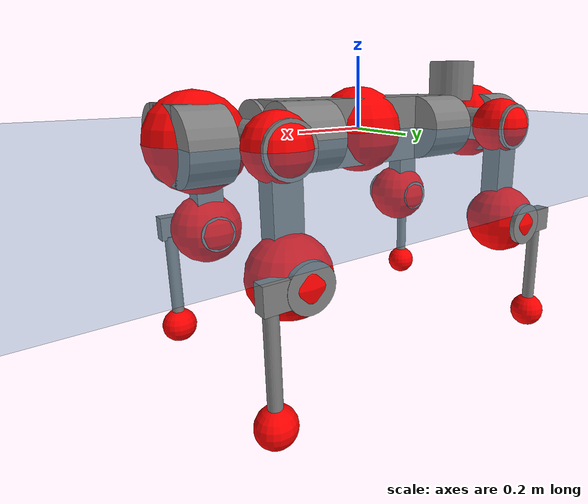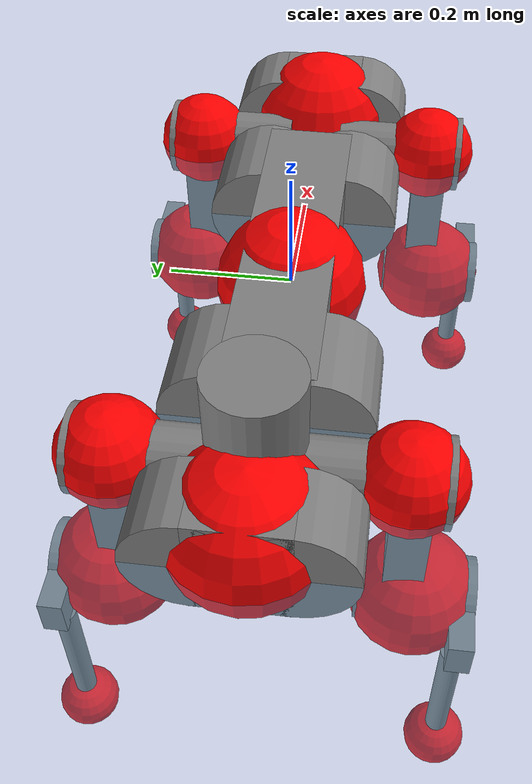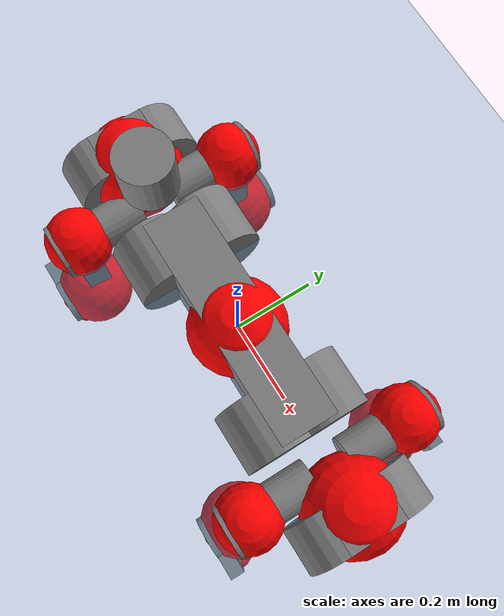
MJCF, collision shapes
<mujoco model="anymal_c">
  <compiler angle="radian" assetdir="assets" balanceinertia="true" inertiafromgeom="false"/>

  <option timestep="0.005" density="1.2" viscosity="2e-05"/>

  <size nkey="1"/>

  <visual>
    <quality shadowsize="8192"/>
    <map shadowclip="0.5"/>
  </visual>

  <default>
    <default class="/">
      <material specular="0" shininess="0.25"/>
      <geom contype="0" conaffinity="0" group="1" solref="-1000 -80"/>
      <site size="0.01 0.005 0.005" group="5"/>
      <general forcelimited="true" forcerange="-80 80" biastype="affine" gainprm="80" biasprm="0 -80 -2"/>
      <default class="anymal_c">
        <joint armature="0.01" damping="0.01" frictionloss="0.1"/>
        <default class="visual">
          <geom type="mesh" group="2"/>
          <default class="visual_zflip"/>
        </default>
        <default class="collision">
          <geom type="cylinder" group="3"/>
          <default class="foot">
            <geom size="0.03 0 0" type="sphere" condim="6" priority="1" friction="0.8 0.02 0.01" solimp="0.015 1 0.03"/>
          </default>
        </default>
      </default>
      <default class="reward_collision_sphere">
        <geom group="5" rgba="1 0 0 1"/>
      </default>
    </default>
  </default>

  <asset>
    <texture type="skybox" colorspace="auto" name="//unnamed_texture_0" builtin="gradient" rgb1="0.95 0.95 0.95" rgb2="0.95 0.95 0.95" width="100" height="600"/>
    <texture type="2d" colorspace="auto" name="texplane" builtin="checker" rgb1="0.345 0.575 0.748" rgb2="0.345 0.575 0.748" markrgb="1 1 1" width="512" height="512"/>
    <texture type="2d" colorspace="linear" name="base" file="base.png"/>
    <texture type="2d" colorspace="linear" name="top_shell" file="top_shell.png"/>
    <texture type="2d" colorspace="linear" name="bottom_shell" file="bottom_shell.png"/>
    <texture type="2d" colorspace="linear" name="remote" file="remote.png"/>
    <texture type="2d" colorspace="linear" name="hatch" file="hatch.png"/>
    <texture type="2d" colorspace="linear" name="handle" file="handle.png"/>
    <texture type="2d" colorspace="linear" name="face" file="face.png"/>
    <texture type="2d" colorspace="linear" name="battery" file="battery.png"/>
    <texture type="2d" colorspace="linear" name="lidar_cage" file="lidar_cage.png"/>
    <texture type="2d" colorspace="linear" name="depth_camera" file="depth_camera.png"/>
    <texture type="2d" colorspace="linear" name="wide_angle_camera" file="wide_angle_camera.png"/>
    <texture type="2d" colorspace="linear" name="lidar" file="lidar.png"/>
    <texture type="2d" colorspace="linear" name="drive" file="drive.png"/>
    <texture type="2d" colorspace="linear" name="hip_l" file="hip_l.png"/>
    <texture type="2d" colorspace="linear" name="shank_l" file="shank_l.png"/>
    <texture type="2d" colorspace="linear" name="foot" file="foot.png"/>
    <texture type="2d" colorspace="linear" name="thigh" file="thigh.png"/>
    <texture type="2d" colorspace="linear" name="shank_r" file="shank_r.png"/>
    <texture type="2d" colorspace="linear" name="hip_r" file="hip_r.png"/>
    <material name="MatPlane" class="/" texture="texplane" texuniform="true" texrepeat="2 2" specular="0.9" shininess="0.5"/>
    <material name="black_plastic" class="/" rgba="0.007 0.007 0.007 1"/>
    <material name="green" class="/" rgba="0.052 0.178 0.033 1"/>
    <material name="red" class="/" rgba="0.178 0.006 0.005 1"/>
    <material name="yellow" class="/" rgba="0.178 0.119 0.006 1"/>
    <material name="lwl" class="/" rgba="0.8 0.8 0.8 1"/>
    <material name="base" class="/" texture="base"/>
    <material name="top_shell" class="/" texture="top_shell"/>
    <material name="bottom_shell" class="/" texture="bottom_shell"/>
    <material name="hip_l" class="/" texture="hip_l"/>
    <material name="thigh" class="/" texture="thigh"/>
    <material name="shank_l" class="/" texture="shank_l"/>
    <material name="foot" class="/" texture="foot"/>
    <material name="hip_r" class="/" texture="hip_r"/>
    <material name="shank" class="/" texture="shank_r"/>
    <material name="hatch" class="/" texture="hatch"/>
    <material name="remote" class="/" texture="remote"/>
    <material name="handle" class="/" texture="handle"/>
    <material name="face" class="/" texture="face"/>
    <material name="depth_camera" class="/" texture="depth_camera"/>
    <material name="wide_angle_camera" class="/" texture="wide_angle_camera"/>
    <material name="battery" class="/" texture="battery"/>
    <material name="lidar_cage" class="/" texture="lidar_cage"/>
    <material name="lidar" class="/" texture="lidar"/>
    <material name="drive" class="/" texture="drive"/>
    <mesh name="base_0" class="/" file="base_0.obj"/>
    <mesh name="base_1" class="/" file="base_1.obj"/>
    <mesh name="base_2" class="/" file="base_2.obj"/>
    <mesh name="base_3" class="/" file="base_3.obj"/>
    <mesh name="base_4" class="/" file="base_4.obj"/>
    <mesh name="base_5" class="/" file="base_5.obj"/>
    <mesh name="top_shell" class="/" file="top_shell.obj"/>
    <mesh name="bottom_shell" class="/" file="bottom_shell.obj"/>
    <mesh name="remote" class="/" file="remote.obj"/>
    <mesh name="handle" class="/" file="handle.obj"/>
    <mesh name="face" class="/" file="face.obj"/>
    <mesh name="wide_angle_camera" class="/" file="wide_angle_camera.obj"/>
    <mesh name="depth_camera" class="/" file="depth_camera.obj"/>
    <mesh name="battery" class="/" file="battery.obj"/>
    <mesh name="lidar_cage" class="/" file="lidar_cage.obj"/>
    <mesh name="lidar" class="/" file="lidar.obj"/>
    <mesh name="drive" class="/" file="drive.obj"/>
    <mesh name="hip_l" class="/" file="hip_l.obj"/>
    <mesh name="thigh" class="/" file="thigh.obj"/>
    <mesh name="shank_l" class="/" file="shank_l.obj"/>
    <mesh name="foot" class="/" file="foot.obj"/>
    <mesh name="hip_r" class="/" file="hip_r.obj"/>
    <mesh name="hatch" class="/" file="hatch.obj"/>
    <mesh name="shank_r" class="/" file="shank_r.obj"/>
  </asset>

  <worldbody>
    <geom name="floor" class="/" size="100 100 0.125" type="plane" group="0" material="MatPlane"/>
    <light name="toplight_shadow" class="/" pos="0 0 5" dir="0.0990148 0.0990148 -0.990148" type="directional" ambient="0.04 0.04 0.04" diffuse="0.55 0.55 0.55" specular="0.12 0.12 0.12"/>
    <light name="toplight_fill" class="/" pos="0 0 5" dir="0.0990148 0.0990148 -0.990148" type="directional" castshadow="false" ambient="0.04 0.04 0.04" diffuse="0.3 0.3 0.3" specular="0.08 0.08 0.08"/>
    <body name="trunk" childclass="anymal_c" pos="-0.000528228 -0.00029306 -0.00268144" quat="0.999999 0.0012028 0.000615795 2.57482e-05">
      <inertial pos="0.00291328 0.00226411 0.0492622" quat="0.499414 0.500431 0.509501 0.490472" mass="20.6191" diaginertia="0.953299 0.626479 0.229418"/>
      <joint name="//unnamed_joint_0" type="free" armature="0" damping="0" frictionloss="0"/>
      <geom name="//unnamed_geom_1" class="visual" material="green" mesh="base_0"/>
      <geom name="//unnamed_geom_2" class="visual" material="yellow" mesh="base_1"/>
      <geom name="//unnamed_geom_3" class="visual" material="red" mesh="base_2"/>
      <geom name="//unnamed_geom_4" class="visual" material="black_plastic" mesh="base_3"/>
      <geom name="//unnamed_geom_5" class="visual" material="lwl" mesh="base_4"/>
      <geom name="//unnamed_geom_6" class="visual" material="base" mesh="base_5"/>
      <geom name="trunk_1" class="collision" size="0.296772 0.0716346 0.0921017" type="box"/>
      <geom name="trunk_2" class="collision" size="0.0921017 0.074193" pos="0.233775 0.0694395 0" quat="0.707107 0 0.707107 0"/>
      <geom name="trunk_3" class="collision" size="0.0921017 0.074193" pos="-0.233775 0.0694395 0" quat="0.707107 0 0.707107 0"/>
      <geom name="trunk_4" class="collision" size="0.0921017 0.074193" pos="0.233775 -0.0694395 0" quat="0.707107 0 0.707107 0"/>
      <geom name="trunk_5" class="collision" size="0.0921017 0.074193" pos="-0.233775 -0.0694395 0" quat="0.707107 0 0.707107 0"/>
      <geom name="//unnamed_geom_12" class="visual" material="top_shell" mesh="top_shell"/>
      <geom name="//unnamed_geom_13" class="visual" material="bottom_shell" mesh="bottom_shell"/>
      <geom name="//unnamed_geom_14" class="visual" material="remote" mesh="remote"/>
      <geom name="//unnamed_geom_15" class="visual" material="handle" mesh="handle"/>
      <geom name="//unnamed_geom_16" class="visual" pos="0.445517 0 0" quat="1 0 0 0" material="face" mesh="face"/>
      <geom name="trunk_6" class="collision" size="0.0562844 0.0716346 0.0921017" pos="0.504632 0 0" type="box"/>
      <geom name="//unnamed_geom_18" class="collision" size="0.0921017 0.0562844" pos="0.504632 0.0694395 0" quat="0.707107 0 0.707107 0"/>
      <geom name="//unnamed_geom_19" class="collision" size="0.0921017 0.0562844" pos="0.504632 -0.0694395 0" quat="0.707107 0 0.707107 0"/>
      <geom name="//unnamed_geom_20" class="visual" pos="0.496192 0 -0.0287503" quat="0.965926 0 0.258819 0" material="depth_camera" mesh="depth_camera"/>
      <geom name="//unnamed_geom_21" class="visual" pos="0.551387 0 0.0150184" material="wide_angle_camera" mesh="wide_angle_camera"/>
      <geom name="//unnamed_geom_22" class="visual_zflip" pos="-0.445517 0 0" quat="0 0 0 1" material="face" mesh="face"/>
      <geom name="trunk_7" class="collision" size="0.0562844 0.0716346 0.0921017" pos="-0.504632 0 0" quat="0 0 0 1" type="box"/>
      <geom name="//unnamed_geom_24" class="collision" size="0.0921017 0.0562844" pos="-0.504632 -0.0694395 0" quat="0 -0.707107 0 0.707107"/>
      <geom name="//unnamed_geom_25" class="collision" size="0.0921017 0.0562844" pos="-0.504632 0.0694395 0" quat="0 -0.707107 0 0.707107"/>
      <geom name="//unnamed_geom_26" class="visual" pos="-0.496192 0 -0.0287503" quat="0 -0.258819 0 0.965926" material="depth_camera" mesh="depth_camera"/>
      <geom name="//unnamed_geom_27" class="visual_zflip" pos="-0.551387 0 0.0150184" quat="0 0 0 1" material="wide_angle_camera" mesh="wide_angle_camera"/>
      <geom name="//unnamed_geom_28" class="visual" material="battery" mesh="battery"/>
      <geom name="//unnamed_geom_29" class="visual" pos="0 0.0747578 0.0296881" quat="0.683013 -0.183013 0.183013 0.683013" material="depth_camera" mesh="depth_camera"/>
      <geom name="//unnamed_geom_30" class="visual" pos="0 -0.0747578 0.0296881" quat="0.683013 0.183013 0.183013 -0.683013" material="depth_camera" mesh="depth_camera"/>
      <geom name="//unnamed_geom_31" class="visual" pos="-0.391238 0 0.0737377" quat="1 0 0 0" material="lidar_cage" mesh="lidar_cage"/>
      <geom name="trunk_8" class="collision" size="0.0716346 0.0614011" pos="-0.391238 0 0.133932"/>
      <geom name="//unnamed_geom_33" class="visual" pos="-0.391238 -3.2544e-05 0.14266" quat="0.707107 0 0 -0.707107" material="lidar" mesh="lidar"/>
      <geom name="//unnamed_geom_34" class="visual" pos="0.322341 0.103171 -1.93902e-10" quat="0.258819 0.965926 0 0" material="drive" mesh="drive"/>
      <geom name="//unnamed_geom_35" class="visual" pos="0.322341 -0.103171 1.93902e-10" quat="0.258819 -0.965926 0 0" material="drive" mesh="drive"/>
      <geom name="//unnamed_geom_36" class="visual" pos="-0.322341 0.103171 1.93902e-10" quat="0 0 0.965926 -0.258819" material="drive" mesh="drive"/>
      <geom name="//unnamed_geom_37" class="visual" pos="-0.322341 -0.103171 -1.93902e-10" quat="0 0 -0.965926 -0.258819" material="drive" mesh="drive"/>
      <geom name="//unnamed_geom_38" class="visual" pos="0.12468 0 0.0732361" quat="1 0 0 0" material="hatch" mesh="hatch"/>
      <geom name="//unnamed_geom_39" class="reward_collision_sphere" size="0.122802"/>
      <geom name="//unnamed_geom_40" class="reward_collision_sphere" size="0.122802" pos="0.483673 0 0"/>
      <geom name="//unnamed_geom_41" class="reward_collision_sphere" size="0.122802" pos="-0.483673 0 0"/>
      <site name="imu" pos="0.262329 0.0141969 0.0349611" size="0.0102335"/>
      <camera name="track" pos="0 -1.98399 0" quat="0.707107 0.707107 0 0" mode="trackcom"/>
      <camera name="ego_camera" pos="0.483673 0 -0.0401294" quat="-0.5 -0.5 0.5 0.5"/>
      <body name="LF_HIP" pos="0.322958 0.103417 0.00199927" quat="0.258854 0.965917 1.17759e-05 8.44049e-06">
        <inertial pos="0.0582917 -0.014967 -0.0107789" quat="-0.139696 0.707221 -0.129305 0.680885" mass="2.93102" diaginertia="0.00850252 0.00471262 0.00330151"/>
        <joint name="LF_HAA" pos="0 0 0" axis="0.999945 0.0098152 -0.0035883" range="-0.721191 0.505184" armature="0.0102194" damping="0" frictionloss="0.106378"/>
        <geom name="//unnamed_geom_42" class="visual" pos="0 -1.14064e-05 1.87349e-06" quat="0.258819 -0.965926 0 0" material="hip_l" mesh="hip_l"/>
        <geom name="//unnamed_geom_43" class="visual" pos="0.0643823 -0.0769262 -0.0444965" quat="0.183013 -0.683013 0.683013 0.183013" material="drive" mesh="drive"/>
        <geom name="//unnamed_geom_44" class="collision" size="0.0511676 0.0716346" pos="0.0643823 -0.011864 -0.00692733" quat="-0.353553 -0.612372 0.612372 -0.353553"/>
        <body name="LF_THIGH" pos="0.0624353 -0.0710639 -0.0398613" quat="0.182849 -0.683115 0.682872 0.183317">
          <inertial pos="0.0331872 0.00017566 -0.246932" quat="0.99348 -0.00321366 -0.0775295 0.0835296" mass="3.141" diaginertia="0.0414247 0.027747 0.00399049"/>
          <joint name="LF_HFE" pos="0 0 0" axis="0.999997 0.00100068 -0.0020189" stiffness="0.00166552" range="-3.16627 3.13749" armature="0.00929253" damping="0.0177546" frictionloss="0.102647"/>
          <geom name="//unnamed_geom_45" class="visual" pos="0.00164811 2.59704e-06 0" quat="0.707107 0 0 -0.707107" material="thigh" mesh="thigh"/>
          <geom name="//unnamed_geom_46" class="collision" size="0.0665179 0.0409341" pos="0.0429932 0 0" quat="0.5 0.5 -0.5 -0.5"/>
          <geom name="//unnamed_geom_47" class="collision" size="0.0383757 0.0307006 0.144614" pos="0.0322449 0 -0.141771" quat="0.707107 0 0 -0.707107" type="box"/>
          <geom name="//unnamed_geom_48" class="visual" pos="0.107805 0 -0.285922" quat="1 0 0 0" material="drive" mesh="drive"/>
          <geom name="//unnamed_geom_49" class="collision" size="0.0511676 0.0716346" pos="0.0325673 0 -0.285922" quat="0.707107 0 0.707107 0"/>
          <geom name="//unnamed_geom_50" class="reward_collision_sphere" size="0.0818682" pos="0.0268707 0 0"/>
          <body name="LF_SHANK" pos="0.106887 8.3036e-05 -0.286866" quat="1 8.31982e-05 -2.09265e-05 -3.02028e-05">
            <inertial pos="0.00332851 -0.0634368 -0.0808985" quat="0.992773 -0.117618 -0.000124158 -0.0238209" mass="0.625442" diaginertia="0.0139906 0.00879487 0.00113314"/>
            <joint name="LF_KFE" pos="0 0 0" axis="0.999974 0.00667715 0.00288641" range="-3.19133 3.16204" armature="0.0106558" damping="0.0144394" frictionloss="0.115847"/>
            <geom name="//unnamed_geom_51" class="visual" pos="0.000537413 0.00286551 0" quat="0.707107 0 0 -0.707107" material="shank_l" mesh="shank_l"/>
            <geom name="LF_kfe_act" class="collision" size="0.0614011 0.020467" pos="0.0214966 0 0" quat="0.5 0.5 -0.5 -0.5"/>
            <geom name="//unnamed_geom_53" class="collision" size="0.0588417 0.0345381 0.0194437" pos="0.0214966 -0.0570386 0" quat="0.5 0.5 -0.5 -0.5" type="box"/>
            <geom name="//unnamed_geom_54" class="visual" pos="0.0140264 -0.0863224 -0.339063" quat="0.382683 0 0 -0.92388" material="foot" mesh="foot"/>
            <geom name="LF_calf" class="collision" size="0.0179087 0.144551" pos="0.0140265 -0.0872458 -0.169531" quat="0.707107 0 0 -0.707107"/>
            <geom name="LF_foot" class="foot" size="0.0303801" pos="0.0140265 -0.0872458 -0.31649" quat="0.707107 0 0 -0.707107"/>
            <geom name="//unnamed_geom_57" class="reward_collision_sphere" size="0.102335" pos="-0.0537415 0 0"/>
            <geom name="//unnamed_geom_58" class="reward_collision_sphere" size="0.0511676" pos="0.0140265 -0.0872458 -0.31649"/>
            <site name="LF_foot" class="foot" pos="0.0140265 -0.0872458 -0.31649" quat="0.707107 0 0 -0.707107" size="0.0102335"/>
          </body>
        </body>
      </body>
      <body name="RF_HIP" pos="0.322177 -0.103368 0.00149861" quat="0.257707 -0.966223 -0.000266889 -9.83761e-05">
        <inertial pos="0.0612988 0.0156241 -0.00801125" quat="0.138799 0.672131 0.13799 0.714096" mass="3.10942" diaginertia="0.00838576 0.00474738 0.00334817"/>
        <joint name="RF_HAA" pos="0 0 0" axis="0.999997 0.00239231 -0.000164002" range="-0.547023 0.70766" armature="0.00975397" damping="0.00423696" frictionloss="0.110475"/>
        <geom name="//unnamed_geom_59" class="visual" pos="0 1.14063e-05 1.87348e-06" quat="0.258819 0.965926 0 0" material="hip_r" mesh="hip_r"/>
        <geom name="//unnamed_geom_60" class="visual" pos="0.0643823 0.0769262 -0.0444965" quat="0.183013 0.683013 0.683013 -0.183013" material="drive" mesh="drive"/>
        <geom name="//unnamed_geom_61" class="collision" size="0.0511676 0.0716346" pos="0.0643823 0.011864 -0.00692733" quat="-0.353553 0.612372 0.612372 0.353553"/>
        <body name="RF_THIGH" pos="0.065101 0.0703652 -0.0421097" quat="0.183013 0.683021 0.682997 -0.183038">
          <inertial pos="0.0328471 -8.65073e-05 -0.245472" quat="0.992578 -0.00233611 -0.079311 0.0921625" mass="3.37346" diaginertia="0.0435745 0.0277726 0.00424724"/>
          <joint name="RF_HFE" pos="0 0 0" axis="0.999999 -0.00145444 -0.00041693" stiffness="0.0144403" range="-3.13796 3.11627" armature="0.0101725" damping="0" frictionloss="0.0903952"/>
          <geom name="//unnamed_geom_62" class="visual" pos="0.00164811 2.59704e-06 0" quat="0.707107 0 0 -0.707107" material="thigh" mesh="thigh"/>
          <geom name="//unnamed_geom_63" class="collision" size="0.0665179 0.0409341" pos="0.0429932 0 0" quat="0.5 0.5 0.5 0.5"/>
          <geom name="//unnamed_geom_64" class="collision" size="0.0383757 0.0307006 0.144614" pos="0.0322449 0 -0.141771" quat="0.707107 0 0 0.707107" type="box"/>
          <geom name="//unnamed_geom_65" class="visual" pos="0.107805 0 -0.285922" quat="1 0 0 0" material="drive" mesh="drive"/>
          <geom name="//unnamed_geom_66" class="collision" size="0.0511676 0.0716346" pos="0.0325673 0 -0.285922" quat="0.707107 0 0.707107 0"/>
          <geom name="//unnamed_geom_67" class="reward_collision_sphere" size="0.0818682" pos="0.0268707 0 0"/>
          <body name="RF_SHANK" pos="0.104738 -0.000713051 -0.286453" quat="1 -0.000463629 0.00017077 -0.000284735">
            <inertial pos="0.00707566 0.0581167 -0.0783158" quat="0.991325 0.128495 -0.00309902 0.0274567" mass="0.615839" diaginertia="0.0140264 0.00885621 0.00107843"/>
            <joint name="RF_KFE" pos="0 0 0" axis="1 -1.97265e-06 -0.000877094" range="-3.1308 3.14808" armature="0.0102584" damping="0" frictionloss="0.0996463"/>
            <geom name="//unnamed_geom_68" class="visual" pos="0.00053741 -0.00286551 0" quat="0.707107 0 0 0.707107" material="shank" mesh="shank_r"/>
            <geom name="RF_kfe_act" class="collision" size="0.0614011 0.020467" pos="0.0214966 0 0" quat="0.5 0.5 0.5 0.5"/>
            <geom name="//unnamed_geom_70" class="collision" size="0.0588417 0.0345381 0.0194437" pos="0.0214966 0.0570386 0" quat="0.5 0.5 0.5 0.5" type="box"/>
            <geom name="//unnamed_geom_71" class="visual" pos="0.0140267 0.0863224 -0.339063" quat="0.382683 0 0 0.92388" material="foot" mesh="foot"/>
            <geom name="RF_calf" class="collision" size="0.0179087 0.144551" pos="0.0140265 0.0872458 -0.169531" quat="0.707107 0 0 0.707107"/>
            <geom name="RF_foot" class="foot" size="0.0283915" pos="0.0140265 0.0872458 -0.31649" quat="0.707107 0 0 0.707107"/>
            <geom name="//unnamed_geom_74" class="reward_collision_sphere" size="0.102335" pos="-0.0537415 0 0"/>
            <geom name="//unnamed_geom_75" class="reward_collision_sphere" size="0.0511676" pos="0.0140265 0.0872458 -0.31649"/>
            <site name="RF_foot" class="foot" pos="0.0140265 0.0872458 -0.31649" quat="0.707107 0 0 0.707107" size="0.0102335"/>
          </body>
        </body>
      </body>
      <body name="LH_HIP" pos="-0.321538 0.101852 0.00272425" quat="-0.000227749 9.62618e-05 0.966019 -0.258472">
        <inertial pos="0.0618933 0.0122663 -0.0110745" quat="0.136346 0.679011 0.128169 0.709878" mass="2.94802" diaginertia="0.00823425 0.00464828 0.003203"/>
        <joint name="LH_HAA" pos="0 0 0" axis="0.999896 -0.0118939 -0.0081747" range="-0.546595 0.776372" armature="0.0115243" damping="0.0127345" frictionloss="0.103476"/>
        <geom name="//unnamed_geom_76" class="visual" pos="0 1.14063e-05 1.87348e-06" quat="-0.258819 -0.965926 0 0" material="hip_r" mesh="hip_r"/>
        <geom name="//unnamed_geom_77" class="visual" pos="0.0643823 0.0769262 -0.0444965" quat="0.183013 0.683013 0.683013 -0.183013" material="drive" mesh="drive"/>
        <geom name="//unnamed_geom_78" class="collision" size="0.0511676 0.0716346" pos="0.0643823 0.011864 -0.00692733" quat="-0.353553 0.612372 0.612372 0.353553"/>
        <body name="LH_THIGH" pos="0.0634778 0.0696784 -0.0405121" quat="0.181946 0.683582 0.682755 -0.182913">
          <inertial pos="0.0357778 -0.00224774 -0.248877" quat="0.992756 -0.00497142 -0.0809745 0.088627" mass="3.37275" diaginertia="0.0462647 0.0293482 0.00448632"/>
          <joint name="LH_HFE" pos="0 0 0" axis="0.9999 -0.0139669 0.00200235" range="-3.17543 3.14971" armature="0.0106466" damping="0" frictionloss="0.103568"/>
          <geom name="//unnamed_geom_79" class="visual" pos="0.00164811 2.59704e-06 0" quat="0.707107 0 0 -0.707107" material="thigh" mesh="thigh"/>
          <geom name="//unnamed_geom_80" class="collision" size="0.0665179 0.0409341" pos="0.0429932 0 0" quat="0.5 0.5 -0.5 -0.5"/>
          <geom name="//unnamed_geom_81" class="collision" size="0.0383757 0.0307006 0.144614" pos="0.0322449 0 -0.141771" quat="0.707107 0 0 -0.707107" type="box"/>
          <geom name="//unnamed_geom_82" class="visual" pos="0.107805 0 -0.285922" quat="1 0 0 0" material="drive" mesh="drive"/>
          <geom name="//unnamed_geom_83" class="collision" size="0.0511676 0.0716346" pos="0.0325673 0 -0.285922" quat="0.707107 0 0.707107 0"/>
          <geom name="//unnamed_geom_84" class="reward_collision_sphere" size="0.0818682" pos="0.0268707 0 0"/>
          <body name="LH_SHANK" pos="0.106666 0.000119952 -0.28801" quat="0.999999 1.95868e-05 -0.00110641 -0.00070557">
            <inertial pos="0.00319348 0.0623081 -0.0834845" quat="0.992496 0.116254 0.00441072 0.0376445" mass="0.618753" diaginertia="0.0142308 0.00858039 0.00110998"/>
            <joint name="LH_KFE" pos="0 0 0" axis="0.99995 -0.00924177 -0.00370619" stiffness="0.00244004" range="-3.15804 3.08959" armature="0.0116542" damping="0" frictionloss="0.103638"/>
            <geom name="//unnamed_geom_85" class="visual" pos="0.00053741 -0.00286551 0" quat="-0.707107 0 0 -0.707107" material="shank" mesh="shank_r"/>
            <geom name="LH_kfe_act" class="collision" size="0.0614011 0.020467" pos="0.0214966 0 0" quat="0.5 0.5 -0.5 -0.5"/>
            <geom name="//unnamed_geom_87" class="collision" size="0.0588417 0.0345381 0.0194437" pos="0.0214966 0.0570386 0" quat="0.5 0.5 -0.5 -0.5" type="box"/>
            <geom name="//unnamed_geom_88" class="visual" pos="0.0140267 0.0863224 -0.339063" quat="-0.382683 0 0 -0.92388" material="foot" mesh="foot"/>
            <geom name="LH_calf" class="collision" size="0.0179087 0.144551" pos="0.0140265 0.0872458 -0.169531" quat="0.707107 0 0 -0.707107"/>
            <geom name="LH_foot" class="foot" size="0.0317587" pos="0.0140265 0.0872458 -0.31649" quat="0.707107 0 0 -0.707107"/>
            <geom name="//unnamed_geom_91" class="reward_collision_sphere" size="0.102335" pos="-0.0537415 0 0"/>
            <geom name="//unnamed_geom_92" class="reward_collision_sphere" size="0.0511676" pos="0.0140265 0.0872458 -0.31649"/>
            <site name="LH_foot" class="foot" pos="0.0140265 0.0872458 -0.31649" quat="0.707107 0 0 -0.707107" size="0.0102335"/>
          </body>
        </body>
      </body>
      <body name="RH_HIP" pos="-0.319668 -0.10371 0.00303893" quat="-4.81156e-05 3.40029e-05 -0.965918 -0.258847">
        <inertial pos="0.0585013 -0.0165683 -0.00846957" quat="-0.125013 0.701285 -0.133055 0.689107" mass="2.98313" diaginertia="0.00897714 0.00491037 0.00349154"/>
        <joint name="RH_HAA" pos="0 0 0" axis="0.999912 -0.000121413 -0.0132847" stiffness="0.00104416" range="-0.732743 0.494434" armature="0.0102466" damping="0.0105015" frictionloss="0.115562"/>
        <geom name="//unnamed_geom_93" class="visual" pos="0 -1.14064e-05 1.87349e-06" quat="-0.258819 0.965926 0 0" material="hip_l" mesh="hip_l"/>
        <geom name="//unnamed_geom_94" class="visual" pos="0.0643823 -0.0769262 -0.0444965" quat="-0.183013 0.683013 -0.683013 -0.183013" material="drive" mesh="drive"/>
        <geom name="//unnamed_geom_95" class="collision" size="0.0511676 0.0716346" pos="0.0643823 -0.011864 -0.00692733" quat="0.353553 0.612372 -0.612372 0.353553"/>
        <body name="RH_THIGH" pos="0.0645009 -0.0718881 -0.0435149" quat="-0.183413 0.683181 -0.68274 -0.183004">
          <inertial pos="0.0334269 -0.000894365 -0.248948" quat="0.992704 -0.010884 -0.0793067 0.0901731" mass="3.2143" diaginertia="0.0452299 0.0289954 0.00423721"/>
          <joint name="RH_HFE" pos="0 0 0" axis="0.999999 -0.00125447 0.0010754" stiffness="0.000543647" range="-3.13437 3.09993" armature="0.0100239" damping="0.0073224" frictionloss="0.107495"/>
          <geom name="//unnamed_geom_96" class="visual" pos="0.00164811 2.59704e-06 0" quat="0.707107 0 0 -0.707107" material="thigh" mesh="thigh"/>
          <geom name="//unnamed_geom_97" class="collision" size="0.0665179 0.0409341" pos="0.0429932 0 0" quat="0.5 0.5 0.5 0.5"/>
          <geom name="//unnamed_geom_98" class="collision" size="0.0383757 0.0307006 0.144614" pos="0.0322449 0 -0.141771" quat="0.707107 0 0 0.707107" type="box"/>
          <geom name="//unnamed_geom_99" class="visual" pos="0.107805 0 -0.285922" quat="1 0 0 0" material="drive" mesh="drive"/>
          <geom name="//unnamed_geom_100" class="collision" size="0.0511676 0.0716346" pos="0.0325673 0 -0.285922" quat="0.707107 0 0.707107 0"/>
          <geom name="//unnamed_geom_101" class="reward_collision_sphere" size="0.0818682" pos="0.0268707 0 0"/>
          <body name="RH_SHANK" pos="0.105138 0.00261015 -0.287912" quat="0.999999 -6.54121e-05 -0.000674143 0.00106349">
            <inertial pos="0.00530948 -0.060876 -0.0808665" quat="0.99191 -0.124305 0.00929222 -0.0240052" mass="0.649383" diaginertia="0.014984 0.0091121 0.00111738"/>
            <joint name="RH_KFE" pos="0 0 0" axis="0.999896 -0.0137303 0.00438229" range="-3.07334 3.156" armature="0.0101664" damping="0" frictionloss="0.107263"/>
            <geom name="//unnamed_geom_102" class="visual" pos="0.000537413 0.00286551 0" quat="0.707107 0 0 -0.707107" material="shank_l" mesh="shank_l"/>
            <geom name="RH_kfe_act" class="collision" size="0.0614011 0.020467" pos="0.0214966 0 0" quat="0.5 0.5 0.5 0.5"/>
            <geom name="//unnamed_geom_104" class="collision" size="0.0588417 0.0345381 0.0194437" pos="0.0214966 -0.0570386 0" quat="0.5 0.5 0.5 0.5" type="box"/>
            <geom name="//unnamed_geom_105" class="visual" pos="0.0140264 -0.0863224 -0.339063" quat="0.382683 0 0 -0.92388" material="foot" mesh="foot"/>
            <geom name="RH_calf" class="collision" size="0.0179087 0.144551" pos="0.0140265 -0.0872458 -0.169531" quat="0.707107 0 0 0.707107"/>
            <geom name="RH_foot" class="foot" size="0.0299925" pos="0.0140265 -0.0872458 -0.31649" quat="0.707107 0 0 0.707107"/>
            <geom name="//unnamed_geom_108" class="reward_collision_sphere" size="0.102335" pos="-0.0537415 0 0"/>
            <geom name="//unnamed_geom_109" class="reward_collision_sphere" size="0.0511676" pos="0.0140265 -0.0872458 -0.31649"/>
            <site name="RH_foot" class="foot" pos="0.0140265 -0.0872458 -0.31649" quat="0.707107 0 0 0.707107" size="0.0102335"/>
          </body>
        </body>
      </body>
    </body>
  </worldbody>

  <contact>
    <pair class="/" geom1="floor" geom2="LF_foot" name="//unnamed_contact_0"/>
    <pair class="/" geom1="floor" geom2="RF_foot" name="//unnamed_contact_1"/>
    <pair class="/" geom1="floor" geom2="LH_foot" name="//unnamed_contact_2"/>
    <pair class="/" geom1="floor" geom2="RH_foot" name="//unnamed_contact_3"/>
  </contact>

  <actuator>
    <general name="LF_HAA" class="/" joint="LF_HAA" forcerange="-82.8119 82.8119" gainprm="82.2238" biasprm="0 -82.2238 -1.89247"/>
    <general name="LF_HFE" class="/" joint="LF_HFE" forcerange="-78.3831 78.3831" gainprm="82.2238" biasprm="0 -82.2238 -1.89247"/>
    <general name="LF_KFE" class="/" joint="LF_KFE" forcerange="-85.8688 85.8688" gainprm="82.2238" biasprm="0 -82.2238 -1.89247"/>
    <general name="RF_HAA" class="/" joint="RF_HAA" forcerange="-84.9718 84.9718" gainprm="82.2238" biasprm="0 -82.2238 -1.89247"/>
    <general name="RF_HFE" class="/" joint="RF_HFE" forcerange="-87.1293 87.1293" gainprm="82.2238" biasprm="0 -82.2238 -1.89247"/>
    <general name="RF_KFE" class="/" joint="RF_KFE" forcerange="-82.027 82.027" gainprm="82.2238" biasprm="0 -82.2238 -1.89247"/>
    <general name="LH_HAA" class="/" joint="LH_HAA" forcerange="-81.9213 81.9213" gainprm="82.2238" biasprm="0 -82.2238 -1.89247"/>
    <general name="LH_HFE" class="/" joint="LH_HFE" forcerange="-73.9628 73.9628" gainprm="82.2238" biasprm="0 -82.2238 -1.89247"/>
    <general name="LH_KFE" class="/" joint="LH_KFE" forcerange="-90.8273 90.8273" gainprm="82.2238" biasprm="0 -82.2238 -1.89247"/>
    <general name="RH_HAA" class="/" joint="RH_HAA" forcerange="-82.322 82.322" gainprm="82.2238" biasprm="0 -82.2238 -1.89247"/>
    <general name="RH_HFE" class="/" joint="RH_HFE" forcerange="-83.7678 83.7678" gainprm="82.2238" biasprm="0 -82.2238 -1.89247"/>
    <general name="RH_KFE" class="/" joint="RH_KFE" forcerange="-86.0772 86.0772" gainprm="82.2238" biasprm="0 -82.2238 -1.89247"/>
  </actuator>

  <sensor>
    <gyro site="imu" name="imu_angular_velocity"/>
    <velocimeter site="imu" name="imu_linear_velocity"/>
    <framelinvel objtype="site" objname="LF_foot" name="LF_foot_global_linear_velocity"/>
    <framelinvel objtype="site" objname="RF_foot" name="RF_foot_global_linear_velocity"/>
    <framelinvel objtype="site" objname="LH_foot" name="LH_foot_global_linear_velocity"/>
    <framelinvel objtype="site" objname="RH_foot" name="RH_foot_global_linear_velocity"/>
  </sensor>

  <keyframe>
    <key name="home" qpos="0 0 0.55 1 0 0 0 0 0.4 -0.8 0 -0.4 0.8 0 -0.4 0.8 0 0.4 -0.8"/>
  </keyframe>
</mujoco>
